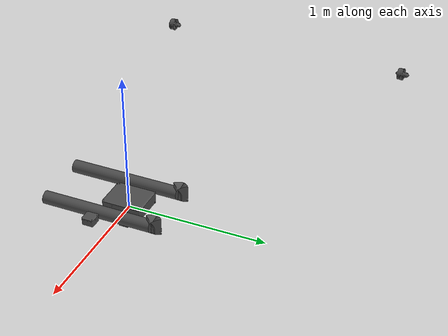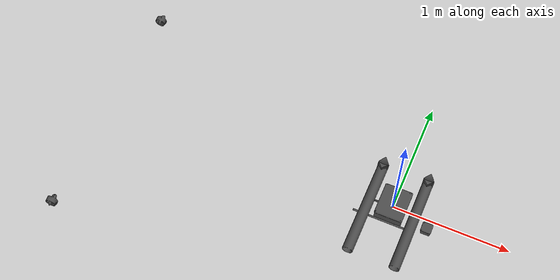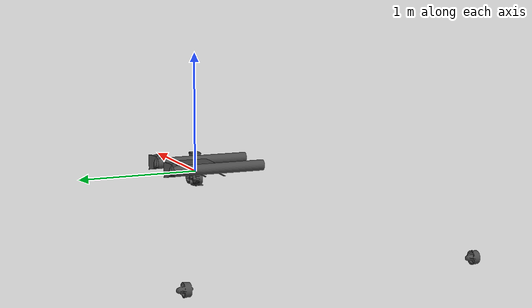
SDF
<sdf version='1.6'>
  <model name='boat_minis'>
    <link name='base_link'>
      <pose>0 0 0 0 -0 0</pose>
        <inertial>
        <pose >-3.9789257506472566e-11 1.012143865601373e-09 0.04330489141524868 0 0 0</pose>
        <mass>4.78319696007218</mass>
        <inertia>
          <ixx>0.051347</ixx>
          <ixy>0</ixy>
          <ixz>0</ixz>
          <iyy>0.038498</iyy>
          <iyz>0</iyz>
          <izz>0.078462</izz>
        </inertia>
      </inertial>

      <visual name='base_link_visual'>
        <pose>0 0 0.0 0 0 0</pose>
        <geometry>
          <mesh>
            <scale>0.001 0.001 0.001</scale>
            <uri>model://boat_minis/meshes/base_link.stl</uri>
          </mesh>
        </geometry>
        <material>
          <script>
            <name>Gazebo/DarkGrey</name>
            <uri>__default__</uri>
          </script>
        </material>
      </visual>

      <visual name="v2_support_beam02_1_visual">
  <pose>0.0 -0.1275 0.0021 0 0 0</pose>
    <geometry>
      <mesh>
          <scale>0.001 0.001 0.001</scale>
          <uri>model://boat_minis/meshes/v2_support_beam02_1.stl</uri>
      </mesh>

    </geometry>
    <material>
          <script>
            <name>Gazebo/DarkGrey</name>
            <uri>__default__</uri>
          </script>
        </material>
  </visual>

  <visual name="v2_support_beam04_1_visual">
     <pose>0.0 0.1275 0.0021 0 0 0</pose>
    <geometry>
      <mesh>
          <scale>0.001 0.001 0.001</scale>
          <uri>model://boat_minis/meshes/v2_support_beam04_1.stl</uri>
      </mesh>
    </geometry>
     <material>
          <script>
            <name>Gazebo/DarkGrey</name>
            <uri>__default__</uri>
          </script>
        </material>
  </visual>
<visual name="floater_support01_2_visual">

    <pose>-0.243899 -0.1265 0.0031 0 0 0</pose>
    <geometry>
      <mesh>
          <scale>0.001 0.001 0.001</scale>
          <uri>model://boat_minis/meshes/floater_support01_2.stl</uri>
      </mesh>
    </geometry>
     <material>
          <script>
            <name>Gazebo/DarkGrey</name>
            <uri>__default__</uri>
          </script>
        </material>
  </visual>

 <visual name="floater_support01_1_visual">
    <pose>0.243899 -0.1265 0.0031 0 0 0</pose>
    <geometry>
      <mesh>
          <scale>0.001 0.001 0.001</scale>
          <uri>model://boat_minis/meshes/floater_support01_1.stl</uri>
      </mesh>
    </geometry>
        <material>
          <script>
            <name>Gazebo/DarkGrey</name>
            <uri>__default__</uri>
          </script>
        </material>
  </visual>

    <visual name="floater_support01_3_visual">
    <pose>0.243899 0.1265 0.0031 0 0 0</pose>
    <geometry>
      <mesh>
          <scale>0.001 0.001 0.001</scale>
          <uri>model://boat_minis/meshes/floater_support01_3.stl</uri>
      </mesh>
    </geometry>
    <material>
          <script>
            <name>Gazebo/DarkGrey</name>
            <uri>__default__</uri>
          </script>
        </material>
  </visual>

   <visual name="floater_support01_4_visual">
    <pose>-0.243899 0.1265 0.0031 0 0 0</pose>
    <geometry>
      <mesh>
          <scale>0.001 0.001 0.001</scale>
          <uri>model://boat_minis/meshes/floater_support01_4.stl</uri>
      </mesh>
    </geometry>
        <material>
          <script>
            <name>Gazebo/DarkGrey</name>
            <uri>__default__</uri>
          </script>
        </material>
  </visual>

    <visual name="v2_support_beam04_2_visual">
    <pose>0.243899 -0.1525 0.0031 0 0 0</pose>
    <geometry>
      <mesh>
          <scale>0.001 0.001 0.001</scale>
          <uri>model://boat_minis/meshes/v2_support_beam04_2.stl</uri>
      </mesh>
    </geometry>
    <material>
          <script>
            <name>Gazebo/DarkGrey</name>
            <uri>__default__</uri>
          </script>
        </material>
  </visual>
    <visual name="guincho_1_visual">
    <pose>0.324899 -0.307 0.056856 0 0 0</pose>
    <geometry>
      <mesh>
          <scale>0.001 0.001 0.001</scale>
          <uri>model://boat_minis/meshes/guincho_1.stl</uri>
      </mesh>
    </geometry>
       <material>
          <script>
            <name>Gazebo/DarkGrey</name>
            <uri>__default__</uri>
          </script>
        </material>
  </visual>

    <visual name="v2_support_beam04_3_visual">
    <pose>-0.04425 -0.382756 0.0063 0 0 0</pose>
    <geometry>
      <mesh>
          <scale>0.001 0.001 0.001</scale>
          <uri>model://boat_minis/meshes/v2_support_beam04_3.stl</uri>
      </mesh>
    </geometry>
    <material>
          <script>
            <name>Gazebo/DarkGrey</name>
            <uri>__default__</uri>
          </script>
        </material>
  </visual>

    <visual name="floater_support01_6_visual">

    <pose>-0.243899 -0.231171 0.0031 0 0 0</pose>
    <geometry>
      <mesh>
          <scale>0.001 0.001 0.001</scale>
          <uri>model://boat_minis/meshes/floater_support01_6.stl</uri>
      </mesh>
    </geometry>
        <material>
          <script>
            <name>Gazebo/DarkGrey</name>
            <uri>__default__</uri>
          </script>
        </material>
  </visual>

    <visual name="floater_support01_5_visual">
    <pose>0.243899 -0.231171 0.0031 0 0 0</pose>

    <geometry>
      <mesh>
          <scale>0.001 0.001 0.001</scale>
          <uri>model://boat_minis/meshes/floater_support01_5.stl</uri>
      </mesh>
    </geometry>
            <material>
          <script>
            <name>Gazebo/DarkGrey</name>
            <uri>__default__</uri>
          </script>
        </material>
  </visual>
  <visual name="floater_1_visual">
    <pose>0.399798 -0.239 0.109512 0 0 0</pose>
    <geometry>
      <mesh>
          <scale>0.001 0.001 0.001</scale>
          <uri>model://boat_minis/meshes/floater_1.stl</uri>
      </mesh>
    </geometry>
    <material>
          <script>
            <name>Gazebo/DarkGrey</name>
            <uri>__default__</uri>
          </script>
        </material>
  </visual>

 <visual name="floater_2_visual">
    <pose>-0.399798 -0.239 0.109512 0 0 0</pose>
    <geometry>
      <mesh>
          <scale>0.001 0.001 0.001</scale>
          <uri>model://boat_minis/meshes/floater_2.stl</uri>
      </mesh>
    </geometry>
    <material>
          <script>
            <name>Gazebo/DarkGrey</name>
            <uri>__default__</uri>
          </script>
        </material>
  </visual>

    <visual name="floater_tip_1_visual">
    <pose>0.399798 -0.219 0.109512 0 0 0</pose>
    <geometry>
      <mesh>
          <scale>0.001 0.001 0.001</scale>
          <uri>model://boat_minis/meshes/floater_tip_1.stl</uri>
      </mesh>
    </geometry>
        <material>
          <script>
            <name>Gazebo/DarkGrey</name>
            <uri>__default__</uri>
          </script>
        </material>
  </visual>

    <visual name="floater_tip_2_visual">

    <pose>-0.399798 -0.219 0.109512 0 0 0</pose>
    <geometry>
      <mesh>
          <scale>0.001 0.001 0.001</scale>
          <uri>model://boat_minis/meshes/floater_tip_2.stl</uri>
      </mesh>
    </geometry>
    <material>
          <script>
            <name>Gazebo/DarkGrey</name>
            <uri>__default__</uri>
          </script>
        </material>
  </visual>
  <visual name="floater_tipV2_1_visual">
    <pose>0.399798 0.581 0.109512 0 0 0</pose>
    <geometry>
      <mesh>
          <scale>0.001 0.001 0.001</scale>
          <uri>model://boat_minis/meshes/floater_tipV2_1.stl</uri>
      </mesh>
    </geometry>
    <material>
          <script>
            <name>Gazebo/DarkGrey</name>
            <uri>__default__</uri>
          </script>
        </material>
  </visual>

 <visual name="floater_tipV2_2_visual">
    <pose>-0.399798 0.581 0.109512 0 0 0</pose>
    <geometry>
      <mesh>
          <scale>0.001 0.001 0.001</scale>
          <uri>model://boat_minis/meshes/floater_tipV2_2.stl</uri>
      </mesh>
    </geometry>
    <material>
          <script>
            <name>Gazebo/DarkGrey</name>
            <uri>__default__</uri>
          </script>
        </material>
  </visual>

    <visual name="gps_antenna_v1_1_visual">
     <pose>-0.199899 0.1485 -0.0304 0 0 0</pose>
    <geometry>
      <mesh>
          <scale>0.001 0.001 0.001</scale>
          <uri>model://boat_minis/meshes/gps_antenna_v1_1.stl</uri>
      </mesh>
    </geometry>
    <material>
          <script>
            <name>Gazebo/DarkGrey</name>
            <uri>__default__</uri>
          </script>
        </material>
  </visual>
    <visual name="UBLOX_ANN-MB-00_GNSS_ANTENNA_v2_1_visual">
    <pose>-0.199899 0.1485 -0.1304 0 0 0</pose>
    <geometry>
      <mesh>
          <scale>0.001 0.001 0.001</scale>
          <uri>model://boat_minis/meshes/UBLOX_ANN-MB-00_GNSS_ANTENNA_v2_1.stl</uri>
      </mesh>
    </geometry>
    <material>
          <script>
            <name>Gazebo/DarkGrey</name>
            <uri>__default__</uri>
          </script>
        </material>
  </visual>
  <visual name="floater_bottom_1_visual">
    <pose>0.243899 0.1525 0.105756 0 0 0</pose>
    <geometry>
      <mesh>
          <scale>0.001 0.001 0.001</scale>
          <uri>model://boat_minis/meshes/floater_bottom_1.stl</uri>
      </mesh>
    </geometry>
    <material>
          <script>
            <name>Gazebo/DarkGrey</name>
            <uri>__default__</uri>
          </script>
        </material>
  </visual>
  <visual name="floater_bottom_2_visual">
    <pose>-0.243899 0.1525 0.105756 0 0 0</pose>
    <geometry>
      <mesh>
          <scale>0.001 0.001 0.001</scale>
          <uri>model://boat_minis/meshes/floater_bottom_2.stl</uri>
      </mesh>
    </geometry>
    <material>
          <script>
            <name>Gazebo/DarkGrey</name>
            <uri>__default__</uri>
          </script>
        </material>
  </visual>

    <visual name="PING-M-BASE-R2-PUBLIC_1_visual">
    <pose>-0.191413 -0.138439 0.127756 0 0 0</pose>
    <geometry>
      <mesh>
          <scale>0.001 0.001 0.001</scale>
          <uri>model://boat_minis/meshes/PING-M-BASE-R2-PUBLIC_1.stl</uri>
      </mesh>
    </geometry>
     <material>
          <script>
            <name>Gazebo/DarkGrey</name>
            <uri>__default__</uri>
          </script>
        </material>
  </visual>
    <visual name="PING-M-HEAD-R3-PUBLIC_1_visual">
     <pose>-0.199899 -0.146924 0.156756 0 0 0</pose>
    <geometry>
      <mesh>
          <scale>0.001 0.001 0.001</scale>
          <uri>model://boat_minis/meshes/PING-M-HEAD-R3-PUBLIC_1.stl</uri>
      </mesh>
    </geometry>
    <material>
          <script>
            <name>Gazebo/DarkGrey</name>
            <uri>__default__</uri>
          </script>
        </material>
  </visual>
      <collision name='base_link_fixed_joint_lump__left_float_collision'>
        <pose >-0.4 1.03 0.2 3.14159 1.57079 3.14159</pose>
        <geometry>
          <cylinder>
            <length>4</length>
            <radius>0.2</radius>
          </cylinder>
        </geometry>
      </collision>
      <collision name='base_link_fixed_joint_lump__left_mid_float_collision_1'>
        <pose>1.85 1.03 0.3 0 1.38 0</pose>
        <geometry>
          <cylinder>
            <length>0.5</length>
            <radius>0.17</radius>
          </cylinder>
        </geometry>
      </collision>
      <collision name='base_link_fixed_joint_lump__left_front_float_collision_2'>
        <pose>2.3 1.03 0.4 0 1.3 0</pose>
        <geometry>
          <cylinder>
            <length>0.45</length>
            <radius>0.12</radius>
          </cylinder>
        </geometry>
      </collision>
      <collision name='base_link_fixed_joint_lump__front_left_beam_lower_collision_3'>
        <pose>0.9 0.85 1 0.78 -0 0</pose>
        <geometry>
          <cylinder>
            <length>0.5</length>
            <radius>0.04</radius>
          </cylinder>
        </geometry>
      </collision>
      <collision name='base_link_fixed_joint_lump__front_left_beam_upper_collision_4'>
        <pose>0.9 0.6 1.18 1.35 -0 0</pose>
        <geometry>
          <cylinder>
            <length>0.2</length>
            <radius>0.04</radius>
          </cylinder>
        </geometry>
      </collision>
      <collision name='base_link_fixed_joint_lump__mid_left_beam_lower_collision_5'>
        <pose>-0.65 0.99 0.7 0.1 0.25 0</pose>
        <geometry>
          <cylinder>
            <length>0.45</length>
            <radius>0.03</radius>
          </cylinder>
        </geometry>
      </collision>
      <collision name='base_link_fixed_joint_lump__mid_left_beam_medium_collision_6'>
        <pose>-0.57 0.87 1.05 0.75 0.25 0</pose>
        <geometry>
          <cylinder>
            <length>0.32</length>
            <radius>0.03</radius>
          </cylinder>
        </geometry>
      </collision>
      <collision name='base_link_fixed_joint_lump__mid_left_beam_upper_collision_7'>
        <pose>-0.55 0.65 1.17 1.35 0.25 0</pose>
        <geometry>
          <cylinder>
            <length>0.3</length>
            <radius>0.03</radius>
          </cylinder>
        </geometry>
      </collision>
      <collision name='base_link_fixed_joint_lump__rear_left_beam_lower_collision_8'>
        <pose>-0.74 1.03 0.7 0 -0.15 0</pose>
        <geometry>
          <cylinder>
            <length>0.45</length>
            <radius>0.03</radius>
          </cylinder>
        </geometry>
      </collision>
      <collision name='base_link_fixed_joint_lump__rear_left_beam_medium_collision_9'>
        <pose>-0.79 0.91 1.05 0.75 -0.15 -0</pose>
        <geometry>
          <cylinder>
            <length>0.32</length>
            <radius>0.03</radius>
          </cylinder>
        </geometry>
      </collision>
      <collision name='base_link_fixed_joint_lump__rear_left_beam_upper_collision_10'>
        <pose>-0.81 0.67 1.18 1.45 -0.15 0</pose>
        <geometry>
          <cylinder>
            <length>0.3</length>
            <radius>0.03</radius>
          </cylinder>
        </geometry>
      </collision>
      <collision name='base_link_fixed_joint_lump__left_joint_collision_11'>
        <pose>0.58 1.03 0.6 0 -0.6 0</pose>
        <geometry>
          <box>
            <size>0.65 0.2 0.1</size>
          </box>
        </geometry>
      </collision>
      <collision name='base_link_fixed_joint_lump__right_float_collision_12'>
        <pose>-0.4 -1.03 0.2 3.14159 1.57079 3.14159</pose>
        <geometry>
          <cylinder>
            <length>4</length>
            <radius>0.2</radius>
          </cylinder>
        </geometry>
      </collision>
      <collision name='base_link_fixed_joint_lump__right_mid_float_collision_13'>
        <pose>1.85 -1.03 0.3 0 1.38 0</pose>
        <geometry>
          <cylinder>
            <length>0.5</length>
            <radius>0.17</radius>
          </cylinder>
        </geometry>
      </collision>
      <collision name='base_link_fixed_joint_lump__right_front_float_collision_14'>
        <pose>2.3 -1.03 0.4 0 1.3 0</pose>
        <geometry>
          <cylinder>
            <length>0.45</length>
            <radius>0.12</radius>
          </cylinder>
        </geometry>
      </collision>
      <collision name='base_link_fixed_joint_lump__front_right_beam_lower_collision_15'>
        <pose>0.9 -0.85 1 -0.78 0 0</pose>
        <geometry>
          <cylinder>
            <length>0.5</length>
            <radius>0.04</radius>
          </cylinder>
        </geometry>
      </collision>
      <collision name='base_link_fixed_joint_lump__front_right_beam_upper_collision_16'>
        <pose>0.9 -0.6 1.18 -1.35 0 0</pose>
        <geometry>
          <cylinder>
            <length>0.2</length>
            <radius>0.04</radius>
          </cylinder>
        </geometry>
      </collision>
      <collision name='base_link_fixed_joint_lump__mid_right_beam_lower_collision_17'>
        <pose>-0.65 -0.99 0.7 -0.1 0.25 0</pose>
        <geometry>
          <cylinder>
            <length>0.45</length>
            <radius>0.03</radius>
          </cylinder>
        </geometry>
      </collision>
      <collision name='base_link_fixed_joint_lump__mid_right_beam_medium_collision_18'>
        <pose>-0.57 -0.87 1.05 -0.75 0.25 0</pose>
        <geometry>
          <cylinder>
            <length>0.32</length>
            <radius>0.03</radius>
          </cylinder>
        </geometry>
      </collision>
      <collision name='base_link_fixed_joint_lump__mid_right_beam_upper_collision_19'>
        <pose>-0.55 -0.65 1.17 -1.35 0.25 0</pose>
        <geometry>
          <cylinder>
            <length>0.3</length>
            <radius>0.03</radius>
          </cylinder>
        </geometry>
      </collision>
      <collision name='base_link_fixed_joint_lump__rear_right_beam_lower_collision_20'>
        <pose>-0.74 -1.03 0.7 0 -0.15 0</pose>
        <geometry>
          <cylinder>
            <length>0.45</length>
            <radius>0.03</radius>
          </cylinder>
        </geometry>
      </collision>
      <collision name='base_link_fixed_joint_lump__rear_right_beam_medium_collision_21'>
        <pose>-0.79 -0.91 1.05 -0.75 -0.15 0</pose>
        <geometry>
          <cylinder>
            <length>0.32</length>
            <radius>0.03</radius>
          </cylinder>
        </geometry>
      </collision>
      <collision name='base_link_fixed_joint_lump__rear_right_beam_upper_collision_22'>
        <pose>-0.81 -0.67 1.18 -1.45 -0.15 0</pose>
        <geometry>
          <cylinder>
            <length>0.3</length>
            <radius>0.03</radius>
          </cylinder>
        </geometry>
      </collision>
      <collision name='base_link_fixed_joint_lump__right_joint_collision_23'>
        <pose>0.58 -1.03 0.6 0 -0.6 0</pose>
        <geometry>
          <box>
            <size>0.65 0.2 0.1</size>
          </box>
        </geometry>
      </collision>
      <collision name='base_link_fixed_joint_lump__top_base_collision_24'>
        <pose>0 0 1.25 0 -0 0</pose>
        <geometry>
          <box>
            <size>1.85 1 0.1</size>
          </box>
        </geometry>
      </collision>
      <collision name='base_link_fixed_joint_lump__left_battery_collision_collision_25'>
        <pose>0 1 0.6 0 -0 0</pose>
        <geometry>
          <box>
            <size>0.6 0.4 0.31</size>
          </box>
        </geometry>
      </collision>
      <collision name='base_link_fixed_joint_lump__right_battery_collision_collision_26'>
        <pose>0 -1 0.6 0 -0 0</pose>
        <geometry>
          <box>
            <size>0.6 0.4 0.31</size>
          </box>
        </geometry>
      </collision>

    </link>

    <link name='left_propeller_link'>
      <pose>-2.65193 1.02713 -0.191134 0 1.57079 0</pose>
      <inertial>
        <pose>0 0 0 0 -0 0</pose>
        <mass>0.5</mass>
        <inertia>
          <ixx>0.008545</ixx>
          <ixy>0</ixy>
          <ixz>0</ixz>
          <iyy>0.008545</iyy>
          <iyz>0</iyz>
          <izz>0.0144</izz>
        </inertia>
      </inertial>
      <collision name='left_propeller_link_fixed_joint_lump__left_propeller_collision_collision'>
        <pose>-0.08 0 0 3.14159 0.0 3.14159</pose>
        <geometry>
          <cylinder>
            <length>0.18</length>
            <radius>0.24</radius>
          </cylinder>
        </geometry>
      </collision>
  <visual name="left_propeller_link_visual">
    <pose>-0.199899 0.1544 0.110756 0 0 0</pose>
    <geometry>
      <mesh>
          <scale>0.001 0.001 0.001</scale>
          <uri>model://boat_minis/meshes/T200-ASM-CW-THRUSTER-R1_v1__8__1.stl</uri>
      </mesh>
    </geometry>
      <material>
          <script>
            <name>Gazebo/DarkGrey</name>
            <uri>__default__</uri>
          </script>
        </material>
  </visual>

    </link>
    <joint name='left_engine_propeller_joint' type='revolute'>
      <child>left_propeller_link</child>
      <parent>base_link</parent>
      <axis>
        <xyz>1 0 0</xyz>
        <limit>
          <lower>-1e+16</lower>
          <upper>1e+16</upper>
        </limit>
        <dynamics>
          <spring_reference>0</spring_reference>
          <spring_stiffness>0</spring_stiffness>
        </dynamics>
        <use_parent_model_frame>1</use_parent_model_frame>
      </axis>
    </joint>
    <link name='right_propeller_link'>
      <pose>-2.65193 -1.02713 -0.191134 0 1.57079 0</pose>
      <inertial>
        <pose>0 0 0 0 -0 0</pose>
        <mass>0.5</mass>
        <inertia>
          <ixx>0.008545</ixx>
          <ixy>0</ixy>
          <ixz>0</ixz>
          <iyy>0.008545</iyy>
          <iyz>0</iyz>
          <izz>0.0144</izz>
        </inertia>
      </inertial>
      <collision name='right_propeller_link_fixed_joint_lump__right_propeller_collision_collision'>
        <pose>-0.08 0 0 3.14159 0.0 3.14159</pose>
        <geometry>
          <cylinder>
            <length>0.18</length>
            <radius>0.24</radius>
          </cylinder>
        </geometry>
      </collision>
  <visual name="right_propeller_link_visual">
    <pose>0.199899 0.1544 0.110756 0 0 0</pose>

    <geometry>
      <mesh>
          <scale>0.001 0.001 0.001</scale>
          <uri>model://boat_minis/meshes/T200-ASM-CW-THRUSTER-R1_v1__8__2.stl</uri>
      </mesh>
    </geometry>
    <material>
          <script>
            <name>Gazebo/DarkGrey</name>
            <uri>__default__</uri>
          </script>
        </material>
  </visual>
    </link>

    <joint name='right_engine_propeller_joint' type='revolute'>
      <child>right_propeller_link</child>
      <parent>base_link</parent>
      <axis>
        <xyz>1 0 0</xyz>
        <limit>
          <lower>-1e+16</lower>
          <upper>1e+16</upper>
        </limit>
        <dynamics>
          <spring_reference>0</spring_reference>
          <spring_stiffness>0</spring_stiffness>
        </dynamics>
        <use_parent_model_frame>1</use_parent_model_frame>
      </axis>
    </joint>

    <plugin name='usv_dynamics_wamv_dynamics_plugin' filename='libgazebo_usv_dynamics_plugin.so'>
      <bodyName>base_link</bodyName>
      <waterLevel>0.0</waterLevel>
      <waterDensity>997.8</waterDensity>
      <xDotU>0.0</xDotU>
      <yDotV>0.0</yDotV>
      <nDotR>0.0</nDotR>
      <xU>51.3</xU>
      <xUU>72.4</xUU>
      <yV>40.0</yV>
      <yVV>0.0</yVV>
      <zW>500.0</zW>
      <kP>50.0</kP>
      <mQ>50.0</mQ>
      <nR>400.0</nR>
      <nRR>0.0</nRR>
      <hullRadius>0.213</hullRadius>
      <boatWidth>2.4</boatWidth>
      <boatLength>4.9</boatLength>
      <length_n>2</length_n>
      <wave_model>ocean_waves</wave_model>
    </plugin>

    <link name='imu_link'>
      <pose>0 0 0 0 0 0</pose>
      <inertial>
        <pose>0 0 0 0 0 0</pose>
        <mass>0.015</mass>
        <inertia>
          <ixx>1e-05</ixx>
          <ixy>0</ixy>
          <ixz>0</ixz>
          <iyy>1e-05</iyy>
          <iyz>0</iyz>
          <izz>1e-05</izz>
        </inertia>
      </inertial>
      <sensor name="imu_sensor" type="imu">
        <pose>0 0 0 3.141593 0 0</pose>
        <always_on>1</always_on>
        <update_rate>1000.0</update_rate>
      </sensor>
    </link>
    <joint name='imu_joint' type='revolute'>
      <child>imu_link</child>
      <parent>base_link</parent>
      <axis>
        <xyz>1 0 0</xyz>
        <limit>
          <lower>0</lower>
          <upper>0</upper>
          <effort>0</effort>
          <velocity>0</velocity>
        </limit>
        <dynamics>
          <damping>0.7</damping>
        </dynamics>
        <use_parent_model_frame>1</use_parent_model_frame>
      </axis>
    </joint>

    <plugin name="ArduCopter_Plugin" filename="libArduPilotPlugin.so">
      <fdm_addr>127.0.0.1</fdm_addr>
      <fdm_port_in>9002</fdm_port_in>
      <fdm_port_out>9003</fdm_port_out>
      <!--
          Require by APM :
          Only change model and gazebo from XYZ to XY-Z coordinates
      -->
      <modelXYZToAirplaneXForwardZDown>0 0 0 3.141593 0 0</modelXYZToAirplaneXForwardZDown>
      <gazeboXYZToNED>0 0 0 3.141593 0 0</gazeboXYZToNED>
      <imuName>boat::imu_link::imu_sensor</imuName>
      <connectionTimeoutMaxCount>5</connectionTimeoutMaxCount>
      <!--
          incoming control command [0, 1]
          so offset it by 0 to get [0, 1]
          and divide max target by 1.
          offset = 0
          multiplier = 838 max rpm / 1 = 838
        -->
      <control channel="0">
        <type>VELOCITY</type>
        <offset>-0.5</offset>
        <p_gain>1</p_gain>
        <i_gain>0</i_gain>
        <d_gain>0</d_gain>
        <i_max>0</i_max>
        <i_min>0</i_min>
        <cmd_max>10</cmd_max>
        <cmd_min>-10</cmd_min>
        <jointName>left_engine_propeller_joint</jointName>
        <multiplier>-100</multiplier>
      </control>
      <control channel="2">
        <type>VELOCITY</type>
        <offset>-0.5</offset>
        <p_gain>1</p_gain>
        <i_gain>0</i_gain>
        <d_gain>0</d_gain>
        <i_max>0</i_max>
        <i_min>0</i_min>
        <cmd_max>10</cmd_max>
        <cmd_min>-10</cmd_min>
        <jointName>right_engine_propeller_joint</jointName>
        <multiplier>-100</multiplier>
      </control>

    </plugin>
    <plugin name="rotor_1_blade_1" filename="libLiftDragPlugin.so">
      <a0>2</a0>
      <alpha_stall>4</alpha_stall>
      <cla>10.2500</cla>
      <cda>0.10</cda>
      <cma>0.00</cma>
      <cla_stall>-0.025</cla_stall>
      <cda_stall>0.0</cda_stall>
      <cma_stall>0.0</cma_stall>
      <area>0.002</area>
      <air_density>997</air_density>
      <cp>0.084 0 0</cp>
      <forward>0 1 0</forward>
      <upward>0 0 1</upward>
      <link_name>right_propeller_link</link_name>
    </plugin>
    <plugin name="rotor_1_blade_2" filename="libLiftDragPlugin.so">
      <a0>2</a0>
      <alpha_stall>4</alpha_stall>
      <cla>10.2500</cla>
      <cda>0.10</cda>
      <cma>0.00</cma>
      <cla_stall>-0.025</cla_stall>
      <cda_stall>0.0</cda_stall>
      <cma_stall>0.0</cma_stall>
      <area>0.002</area>
      <air_density>997</air_density>
      <cp>-0.084 0 0</cp>
      <forward>0 -1 0</forward>
      <upward>0 0 1</upward>
      <link_name>left_propeller_link</link_name>
    </plugin>

  </model>
</sdf>
